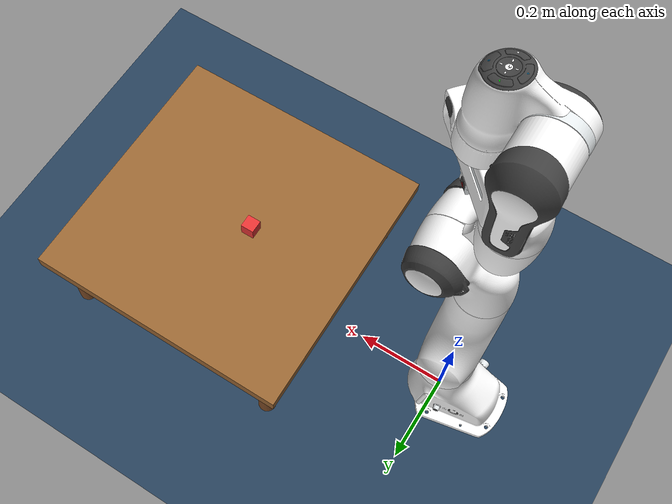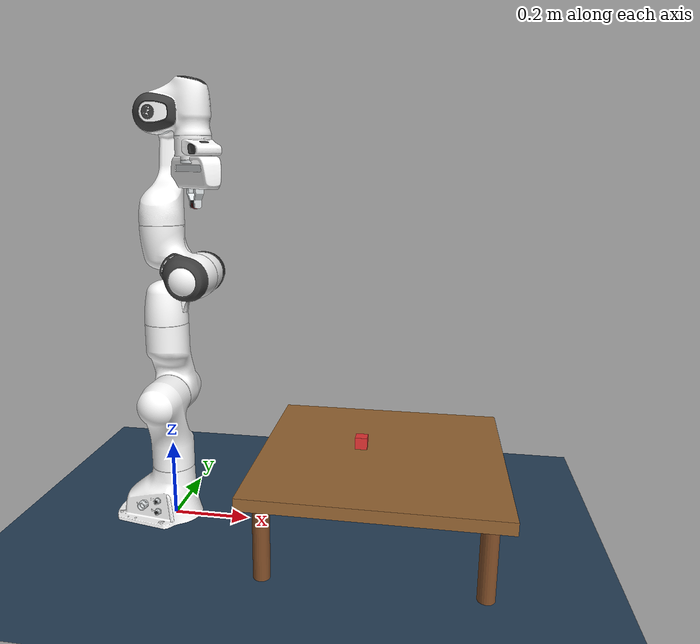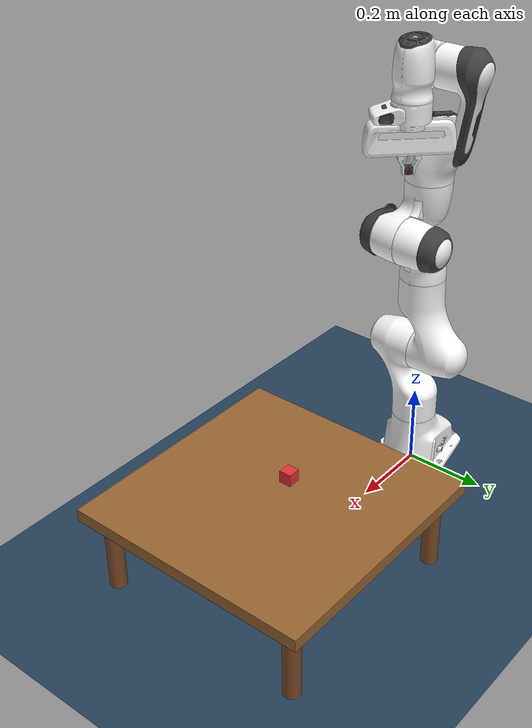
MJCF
<mujoco model="panda_pick_place">
  <compiler angle="radian" autolimits="true" meshdir="../mujoco_menagerie/franka_emika_panda/assets"/>

  <option integrator="implicitfast" timestep="0.002" gravity="0 0 -9.81"/>

  <statistic center="0.4 0 0.4" extent="1"/>

  <visual>
    <headlight diffuse="0.6 0.6 0.6" ambient="0.3 0.3 0.3" specular="0 0 0"/>
    <rgba haze="0.15 0.25 0.35 1"/>
    <global azimuth="150" elevation="-20"/>
  </visual>

  <asset>
    <!-- Textures -->
    <texture type="skybox" builtin="gradient" rgb1="0.3 0.5 0.7" rgb2="0 0 0" width="512" height="3072"/>
    <texture type="2d" name="groundplane" builtin="checker" mark="edge"
             rgb1="0.2 0.3 0.4" rgb2="0.1 0.2 0.3" markrgb="0.8 0.8 0.8" width="300" height="300"/>
    <texture type="2d" name="wood" builtin="flat" rgb1="0.6 0.4 0.2" width="100" height="100"/>

    <!-- Materials -->
    <material name="groundplane" texture="groundplane" texuniform="true" texrepeat="5 5" reflectance="0.2"/>
    <material name="wood" rgba="0.6 0.4 0.2 1"/>
    <material name="red_plastic" rgba="0.9 0.2 0.2 1" specular="0.5" shininess="0.3"/>

    <!-- Panda meshes (collision) -->
    <mesh name="link0_c" file="link0.stl"/>
    <mesh name="link1_c" file="link1.stl"/>
    <mesh name="link2_c" file="link2.stl"/>
    <mesh name="link3_c" file="link3.stl"/>
    <mesh name="link4_c" file="link4.stl"/>
    <mesh name="link5_c0" file="link5_collision_0.obj"/>
    <mesh name="link5_c1" file="link5_collision_1.obj"/>
    <mesh name="link5_c2" file="link5_collision_2.obj"/>
    <mesh name="link6_c" file="link6.stl"/>
    <mesh name="link7_c" file="link7.stl"/>
    <mesh name="hand_c" file="hand.stl"/>

    <!-- Panda meshes (visual) -->
    <mesh file="link0_0.obj"/><mesh file="link0_1.obj"/><mesh file="link0_2.obj"/>
    <mesh file="link0_3.obj"/><mesh file="link0_4.obj"/><mesh file="link0_5.obj"/>
    <mesh file="link0_7.obj"/><mesh file="link0_8.obj"/><mesh file="link0_9.obj"/>
    <mesh file="link0_10.obj"/><mesh file="link0_11.obj"/>
    <mesh file="link1.obj"/><mesh file="link2.obj"/>
    <mesh file="link3_0.obj"/><mesh file="link3_1.obj"/><mesh file="link3_2.obj"/><mesh file="link3_3.obj"/>
    <mesh file="link4_0.obj"/><mesh file="link4_1.obj"/><mesh file="link4_2.obj"/><mesh file="link4_3.obj"/>
    <mesh file="link5_0.obj"/><mesh file="link5_1.obj"/><mesh file="link5_2.obj"/>
    <mesh file="link6_0.obj"/><mesh file="link6_1.obj"/><mesh file="link6_2.obj"/><mesh file="link6_3.obj"/>
    <mesh file="link6_4.obj"/><mesh file="link6_5.obj"/><mesh file="link6_6.obj"/><mesh file="link6_7.obj"/>
    <mesh file="link6_8.obj"/><mesh file="link6_9.obj"/><mesh file="link6_10.obj"/><mesh file="link6_11.obj"/>
    <mesh file="link6_12.obj"/><mesh file="link6_13.obj"/><mesh file="link6_14.obj"/><mesh file="link6_15.obj"/><mesh file="link6_16.obj"/>
    <mesh file="link7_0.obj"/><mesh file="link7_1.obj"/><mesh file="link7_2.obj"/><mesh file="link7_3.obj"/>
    <mesh file="link7_4.obj"/><mesh file="link7_5.obj"/><mesh file="link7_6.obj"/><mesh file="link7_7.obj"/>
    <mesh file="hand_0.obj"/><mesh file="hand_1.obj"/><mesh file="hand_2.obj"/><mesh file="hand_3.obj"/><mesh file="hand_4.obj"/>
    <mesh file="finger_0.obj"/><mesh file="finger_1.obj"/>

    <!-- Panda materials -->
    <material name="white" rgba="1 1 1 1" specular="0.5" shininess="0.25"/>
    <material name="off_white" rgba="0.901961 0.921569 0.929412 1" specular="0.5" shininess="0.25"/>
    <material name="black" rgba="0.25 0.25 0.25 1" specular="0.5" shininess="0.25"/>
    <material name="green" rgba="0 1 0 1" specular="0.5" shininess="0.25"/>
    <material name="light_blue" rgba="0.039216 0.541176 0.780392 1" specular="0.5" shininess="0.25"/>
  </asset>

  <default>
    <default class="panda">
      <joint armature="0.1" damping="1" axis="0 0 1" range="-2.8973 2.8973"/>
      <general dyntype="none" biastype="affine" ctrlrange="-2.8973 2.8973" forcerange="-87 87"/>
      <default class="finger">
        <joint axis="0 1 0" type="slide" range="0 0.05"/>
      </default>
      <default class="visual">
        <geom type="mesh" contype="0" conaffinity="0" group="2"/>
      </default>
      <default class="collision">
        <geom type="mesh" group="3"/>
      </default>
    </default>
  </default>

  <worldbody>
    <!-- Lighting -->
    <light name="top_light" pos="0.5 0 1.5" dir="0 0 -1" directional="true" diffuse="0.8 0.8 0.8"/>
    <light name="side_light" pos="1 1 1" dir="-1 -1 -1" diffuse="0.3 0.3 0.3"/>

    <!-- Ground plane -->
    <geom name="floor" size="0 0 0.05" type="plane" material="groundplane" conaffinity="1" condim="3"/>

    <!-- Table - positioned for easy reach -->
    <body name="table" pos="0.55 0 0.2">
      <geom name="table_top" type="box" size="0.30 0.30 0.015" material="wood" mass="20" conaffinity="1" condim="3"/>
      <geom name="leg1" type="cylinder" size="0.02 0.10" pos="0.25 0.25 -0.115" rgba="0.5 0.3 0.15 1"/>
      <geom name="leg2" type="cylinder" size="0.02 0.10" pos="-0.25 0.25 -0.115" rgba="0.5 0.3 0.15 1"/>
      <geom name="leg3" type="cylinder" size="0.02 0.10" pos="0.25 -0.25 -0.115" rgba="0.5 0.3 0.15 1"/>
      <geom name="leg4" type="cylinder" size="0.02 0.10" pos="-0.25 -0.25 -0.115" rgba="0.5 0.3 0.15 1"/>
    </body>

    <!-- Target object: Cube - on table, easy to reach -->
    <body name="target_object" pos="0.5 0 0.24">
      <freejoint name="object_joint"/>
      <geom name="cube" type="box" size="0.015 0.015 0.015" material="red_plastic"
            mass="0.01" friction="2 1 0.005" conaffinity="1" condim="6"/>
    </body>

    <!-- ============= PANDA ROBOT (inlined from menagerie) ============= -->
    <body name="link0" childclass="panda" pos="0 0 0">
      <inertial mass="0.629769" pos="-0.041018 -0.00014 0.049974"
        fullinertia="0.00315 0.00388 0.004285 8.2904e-7 0.00015 8.2299e-6"/>
      <geom mesh="link0_0" material="off_white" class="visual"/>
      <geom mesh="link0_1" material="black" class="visual"/>
      <geom mesh="link0_2" material="off_white" class="visual"/>
      <geom mesh="link0_3" material="black" class="visual"/>
      <geom mesh="link0_4" material="off_white" class="visual"/>
      <geom mesh="link0_5" material="black" class="visual"/>
      <geom mesh="link0_7" material="white" class="visual"/>
      <geom mesh="link0_8" material="white" class="visual"/>
      <geom mesh="link0_9" material="black" class="visual"/>
      <geom mesh="link0_10" material="off_white" class="visual"/>
      <geom mesh="link0_11" material="white" class="visual"/>
      <geom mesh="link0_c" class="collision"/>
      <body name="link1" pos="0 0 0.333">
        <inertial mass="4.970684" pos="0.003875 0.002081 -0.04762"
          fullinertia="0.70337 0.70661 0.0091170 -0.00013900 0.0067720 0.019169"/>
        <joint name="joint1"/>
        <geom material="white" mesh="link1" class="visual"/>
        <geom mesh="link1_c" class="collision"/>
        <body name="link2" quat="1 -1 0 0">
          <inertial mass="0.646926" pos="-0.003141 -0.02872 0.003495"
            fullinertia="0.0079620 2.8110e-2 2.5995e-2 -3.925e-3 1.0254e-2 7.04e-4"/>
          <joint name="joint2" range="-1.7628 1.7628"/>
          <geom material="white" mesh="link2" class="visual"/>
          <geom mesh="link2_c" class="collision"/>
          <body name="link3" pos="0 -0.316 0" quat="1 1 0 0">
            <joint name="joint3"/>
            <inertial mass="3.228604" pos="2.7518e-2 3.9252e-2 -6.6502e-2"
              fullinertia="3.7242e-2 3.6155e-2 1.083e-2 -4.761e-3 -1.1396e-2 -1.2805e-2"/>
            <geom mesh="link3_0" material="white" class="visual"/>
            <geom mesh="link3_1" material="white" class="visual"/>
            <geom mesh="link3_2" material="white" class="visual"/>
            <geom mesh="link3_3" material="black" class="visual"/>
            <geom mesh="link3_c" class="collision"/>
            <body name="link4" pos="0.0825 0 0" quat="1 1 0 0">
              <inertial mass="3.587895" pos="-5.317e-2 1.04419e-1 2.7454e-2"
                fullinertia="2.5853e-2 1.9552e-2 2.8323e-2 7.796e-3 -1.332e-3 8.641e-3"/>
              <joint name="joint4" range="-3.0718 -0.0698"/>
              <geom mesh="link4_0" material="white" class="visual"/>
              <geom mesh="link4_1" material="white" class="visual"/>
              <geom mesh="link4_2" material="black" class="visual"/>
              <geom mesh="link4_3" material="white" class="visual"/>
              <geom mesh="link4_c" class="collision"/>
              <body name="link5" pos="-0.0825 0.384 0" quat="1 -1 0 0">
                <inertial mass="1.225946" pos="-1.1953e-2 4.1065e-2 -3.8437e-2"
                  fullinertia="3.5549e-2 2.9474e-2 8.627e-3 -2.117e-3 -4.037e-3 2.29e-4"/>
                <joint name="joint5"/>
                <geom mesh="link5_0" material="black" class="visual"/>
                <geom mesh="link5_1" material="white" class="visual"/>
                <geom mesh="link5_2" material="white" class="visual"/>
                <geom mesh="link5_c0" class="collision"/>
                <geom mesh="link5_c1" class="collision"/>
                <geom mesh="link5_c2" class="collision"/>
                <body name="link6" quat="1 1 0 0">
                  <inertial mass="1.666555" pos="6.0149e-2 -1.4117e-2 -1.0517e-2"
                    fullinertia="1.964e-3 4.354e-3 5.433e-3 1.09e-4 -1.158e-3 3.41e-4"/>
                  <joint name="joint6" range="-0.0175 3.7525"/>
                  <geom mesh="link6_0" material="off_white" class="visual"/>
                  <geom mesh="link6_1" material="white" class="visual"/>
                  <geom mesh="link6_2" material="black" class="visual"/>
                  <geom mesh="link6_3" material="white" class="visual"/>
                  <geom mesh="link6_4" material="white" class="visual"/>
                  <geom mesh="link6_5" material="white" class="visual"/>
                  <geom mesh="link6_6" material="white" class="visual"/>
                  <geom mesh="link6_7" material="light_blue" class="visual"/>
                  <geom mesh="link6_8" material="light_blue" class="visual"/>
                  <geom mesh="link6_9" material="black" class="visual"/>
                  <geom mesh="link6_10" material="black" class="visual"/>
                  <geom mesh="link6_11" material="white" class="visual"/>
                  <geom mesh="link6_12" material="green" class="visual"/>
                  <geom mesh="link6_13" material="white" class="visual"/>
                  <geom mesh="link6_14" material="black" class="visual"/>
                  <geom mesh="link6_15" material="black" class="visual"/>
                  <geom mesh="link6_16" material="white" class="visual"/>
                  <geom mesh="link6_c" class="collision"/>
                  <body name="link7" pos="0.088 0 0" quat="1 1 0 0">
                    <inertial mass="7.35522e-01" pos="1.0517e-2 -4.252e-3 6.1597e-2"
                      fullinertia="1.2516e-2 1.0027e-2 4.815e-3 -4.28e-4 -1.196e-3 -7.41e-4"/>
                    <joint name="joint7"/>
                    <geom mesh="link7_0" material="white" class="visual"/>
                    <geom mesh="link7_1" material="black" class="visual"/>
                    <geom mesh="link7_2" material="black" class="visual"/>
                    <geom mesh="link7_3" material="black" class="visual"/>
                    <geom mesh="link7_4" material="black" class="visual"/>
                    <geom mesh="link7_5" material="black" class="visual"/>
                    <geom mesh="link7_6" material="black" class="visual"/>
                    <geom mesh="link7_7" material="white" class="visual"/>
                    <geom mesh="link7_c" class="collision"/>
                    <body name="hand" pos="0 0 0.107" quat="0.9238795 0 0 -0.3826834">
                      <inertial mass="0.73" pos="-0.01 0 0.03" diaginertia="0.001 0.0025 0.0017"/>
                      <geom mesh="hand_0" material="off_white" class="visual"/>
                      <geom mesh="hand_1" material="black" class="visual"/>
                      <geom mesh="hand_2" material="black" class="visual"/>
                      <geom mesh="hand_3" material="white" class="visual"/>
                      <geom mesh="hand_4" material="off_white" class="visual"/>
                      <geom mesh="hand_c" class="collision"/>
                      <!-- END-EFFECTOR SITE: This is what the bandit tracks -->
                      <site name="grip_site" pos="0 0 0.105" size="0.01" rgba="1 0 0 0.5"/>
                      <body name="left_finger" pos="0 0 0.0584">
                        <inertial mass="0.015" pos="0 0 0" diaginertia="2.375e-6 2.375e-6 7.5e-7"/>
                        <joint name="finger_joint1" class="finger"/>
                        <geom mesh="finger_0" material="off_white" class="visual"/>
                        <geom mesh="finger_1" material="black" class="visual"/>
                        <!-- Robust collision box for grasping -->
                        <geom name="finger1_col" type="box" size="0.005 0.005 0.01" pos="0 0 0.045"
                              rgba="0 1 0 0.5" group="3" contype="1" conaffinity="1" friction="2 1 0.005"
                              solimp="0.95 0.99 0.001" solref="0.005 1" condim="4"/>
                      </body>
                      <body name="right_finger" pos="0 0 0.0584" quat="0 0 0 1">
                        <inertial mass="0.015" pos="0 0 0" diaginertia="2.375e-6 2.375e-6 7.5e-7"/>
                        <joint name="finger_joint2" class="finger"/>
                        <geom mesh="finger_0" material="off_white" class="visual"/>
                        <geom mesh="finger_1" material="black" class="visual"/>
                        <!-- Robust collision box for grasping -->
                        <geom name="finger2_col" type="box" size="0.005 0.005 0.01" pos="0 0 0.045"
                              rgba="0 1 0 0.5" group="3" contype="1" conaffinity="1" friction="2 1 0.005"
                              solimp="0.95 0.99 0.001" solref="0.005 1" condim="4"/>
                      </body>
                    </body>
                  </body>
                </body>
              </body>
            </body>
          </body>
        </body>
      </body>
    </body>

    <!-- Cameras -->
    <camera name="front_view" pos="1.2 0 0.6" xyaxes="0 1 0 -0.4 0 0.9"/>
    <camera name="top_view" pos="0.4 0 1.2" xyaxes="0 1 0 0 0 1"/>
    <camera name="side_view" pos="0.4 1.0 0.5" xyaxes="-1 0 0 0 -0.3 0.95"/>
  </worldbody>

  <tendon>
    <fixed name="split">
      <joint joint="finger_joint1" coef="0.5"/>
      <joint joint="finger_joint2" coef="0.5"/>
    </fixed>
  </tendon>

  <equality>
    <joint joint1="finger_joint1" joint2="finger_joint2" solimp="0.95 0.99 0.001" solref="0.005 1"/>
  </equality>

  <actuator>
    <general class="panda" name="actuator1" joint="joint1" gainprm="4500" biasprm="0 -4500 -450"/>
    <general class="panda" name="actuator2" joint="joint2" gainprm="4500" biasprm="0 -4500 -450" ctrlrange="-1.7628 1.7628"/>
    <general class="panda" name="actuator3" joint="joint3" gainprm="3500" biasprm="0 -3500 -350"/>
    <general class="panda" name="actuator4" joint="joint4" gainprm="3500" biasprm="0 -3500 -350" ctrlrange="-3.0718 -0.0698"/>
    <general class="panda" name="actuator5" joint="joint5" gainprm="2000" biasprm="0 -2000 -200" forcerange="-12 12"/>
    <general class="panda" name="actuator6" joint="joint6" gainprm="2000" biasprm="0 -2000 -200" forcerange="-12 12" ctrlrange="-0.0175 3.7525"/>
    <general class="panda" name="actuator7" joint="joint7" gainprm="2000" biasprm="0 -2000 -200" forcerange="-12 12"/>
    <general class="panda" name="actuator8" tendon="split" forcerange="-100 100" ctrlrange="0 255" gainprm="0.01568627451 0 0" biasprm="0 -100 -10"/>
  </actuator>

  <keyframe>
    <!-- Home position: arm ready, gripper open. Object at 0.5 0 0.24 -->
    <key name="home" qpos="0 0 0 -1.57079 0 1.57079 -0.7853 0.04 0.04 0.5 0 0.24 1 0 0 0"
         ctrl="0 0 0 -1.57079 0 1.57079 -0.7853 255"/>
  </keyframe>

  <contact>
    <exclude body1="link0" body2="link1"/>
    <exclude body1="hand" body2="left_finger"/>
    <exclude body1="hand" body2="right_finger"/>
    <exclude body1="left_finger" body2="right_finger"/>
  </contact>
</mujoco>
